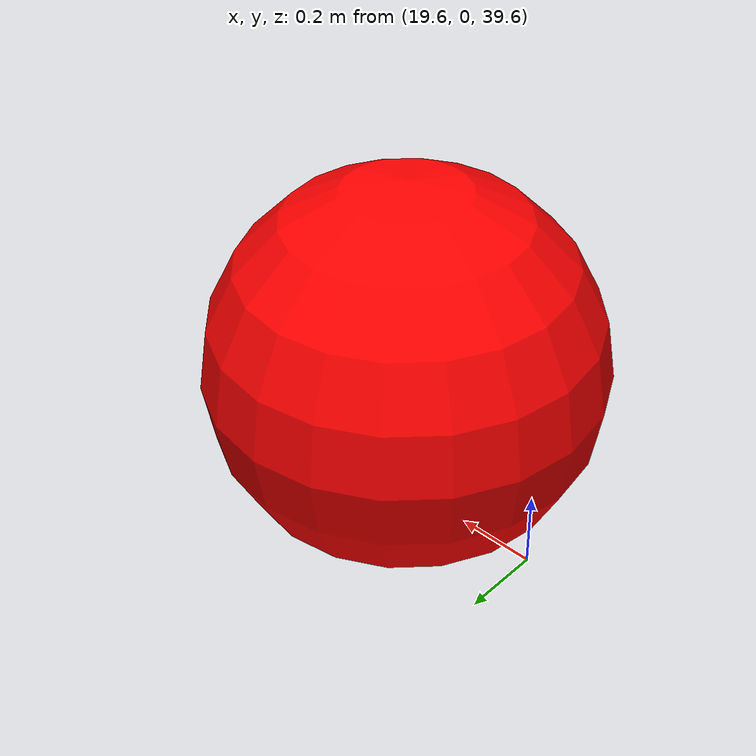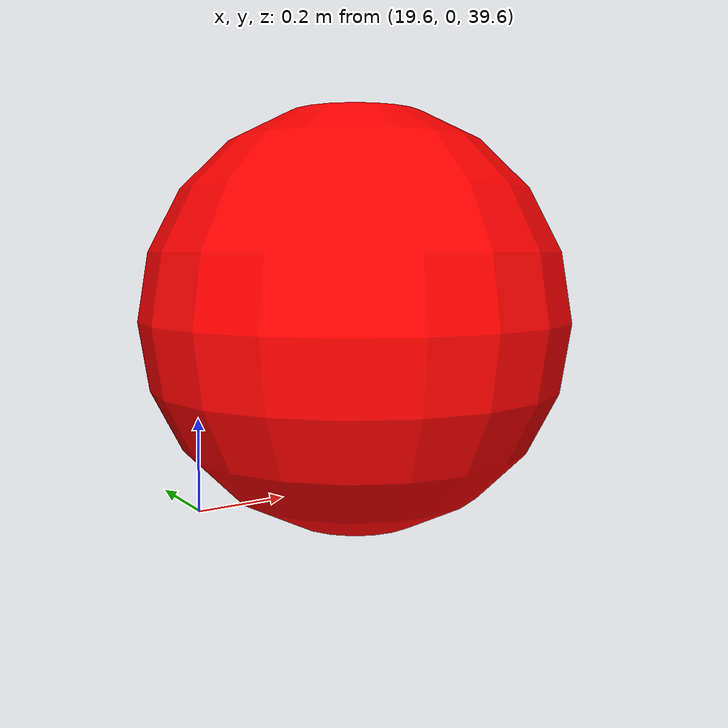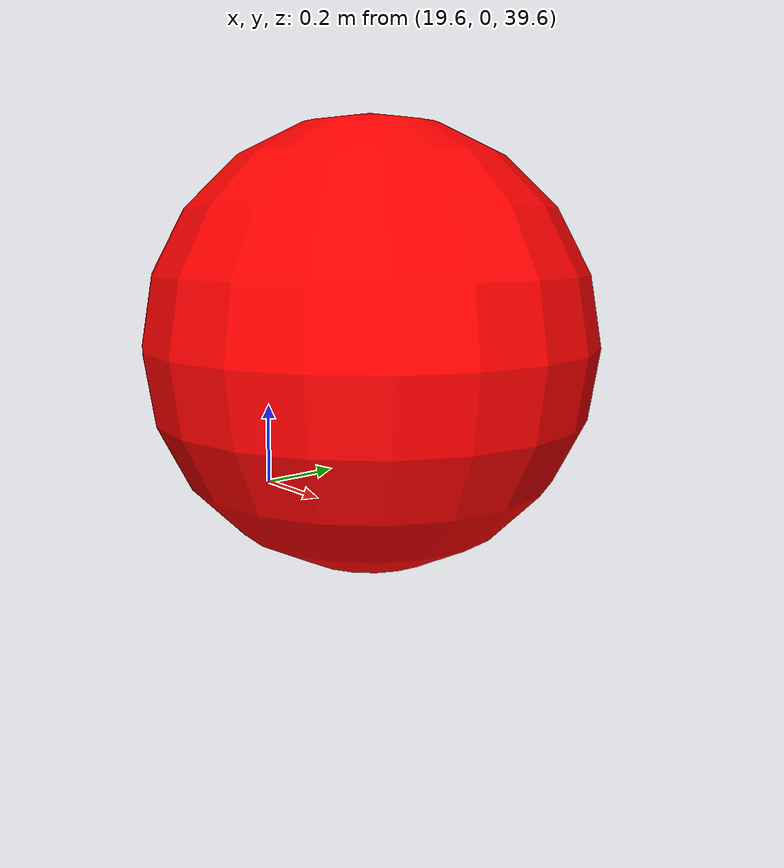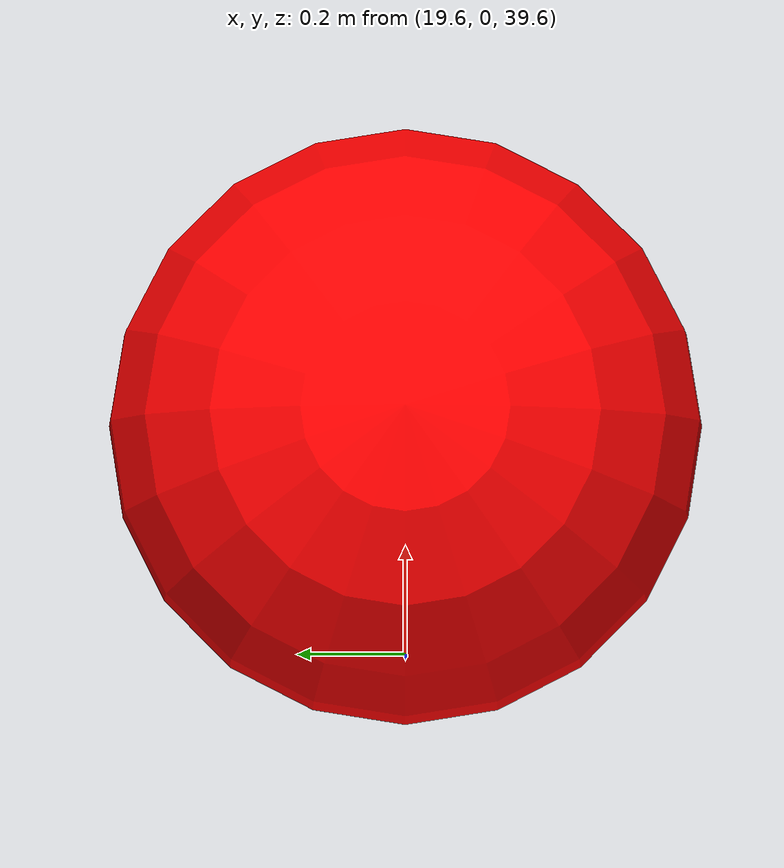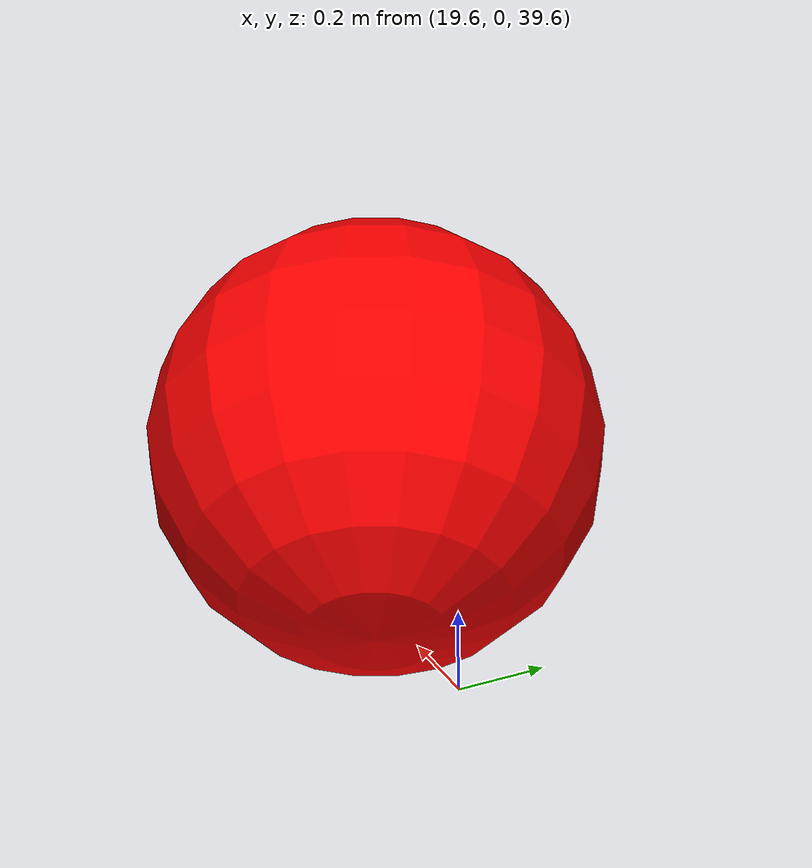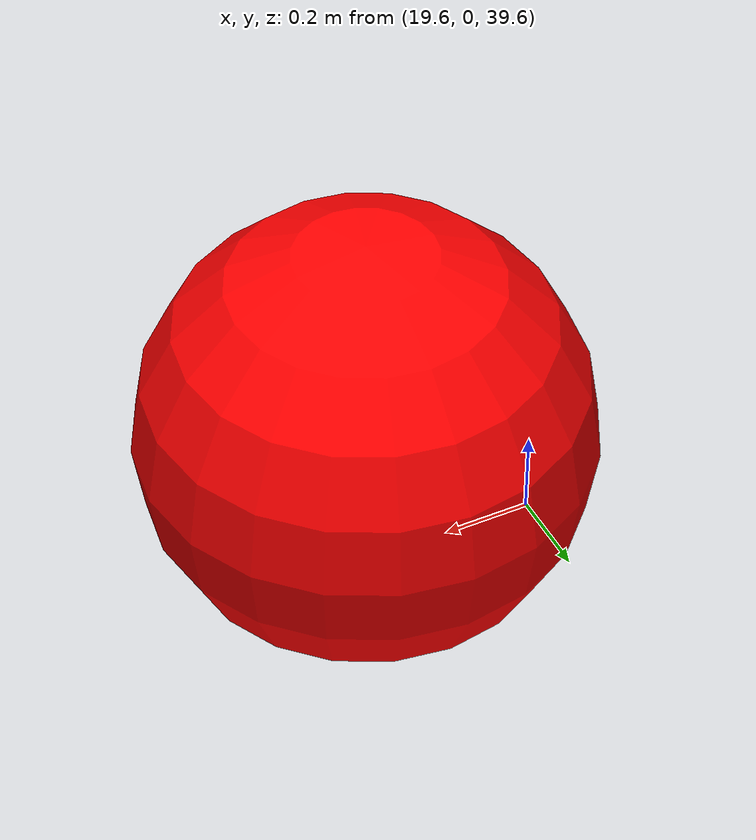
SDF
<?xml version="1.0"?>
<sdf version="1.6">
  <model name="sptballoon">
    <pose>20 0 40 0 0 0</pose>
    <static>false</static>

    <link name="x_link">
      <inertial>
        <mass>0.1</mass>
        <inertia>
          <ixx>0.01</ixx>
          <ixy>0</ixy>
          <ixz>0</ixz>
          <iyy>0.01</iyy>
          <iyz>0</iyz>
          <izz>0.01</izz>
        </inertia>
      </inertial>
    </link>

    <link name="y_link">
      <inertial>
        <mass>0.1</mass>
        <inertia>
          <ixx>0.01</ixx>
          <ixy>0</ixy>
          <ixz>0</ixz>
          <iyy>0.01</iyy>
          <iyz>0</iyz>
          <izz>0.01</izz>
        </inertia>
      </inertial>
    </link>

    <link name="z_link">
      <gravity>false</gravity>
      <inertial>
        <mass>1.0</mass>
        <inertia>
          <ixx>0.1</ixx>
          <ixy>0</ixy>
          <ixz>0</ixz>
          <iyy>0.1</iyy>
          <iyz>0</iyz>
          <izz>0.1</izz>
        </inertia>
      </inertial>
      <visual name="visual">
        <geometry>
          <sphere><radius>0.5</radius></sphere>
        </geometry>
        <material>
          <ambient>1.0 0.0 0.0 1.0</ambient>
          <diffuse>1.0 0.0 0.0 1.0</diffuse>
        </material>
      </visual>
      <collision name="collision">
        <geometry>
          <sphere><radius>0.5</radius></sphere>
        </geometry>
      </collision>
    </link>

    <joint name="x_axis_joint" type="prismatic">
      <parent>world</parent>
      <child>x_link</child>
      <axis>
        <xyz>1 0 0</xyz>
        <limit>
          <lower>-100</lower>
          <upper>100</upper>
          <velocity>3.0</velocity>
        </limit>
        <dynamics>
          <damping>0.5</damping>  <!-- 阻尼 -->
          <friction>0.1</friction>  <!-- 静摩擦 -->
        </dynamics>
      </axis>
    </joint>

    <joint name="y_axis_joint" type="prismatic">
      <parent>x_link</parent>
      <child>y_link</child>
      <axis>
        <xyz>0 1 0</xyz>
        <limit>
          <lower>-100</lower>
          <upper>100</upper>
          <velocity>3.0</velocity>
        </limit>
        <dynamics>
          <damping>0.5</damping>  <!-- 阻尼 -->
          <friction>0.1</friction>  <!-- 静摩擦 -->
        </dynamics>
      </axis>
    </joint>

    <joint name="z_axis_joint" type="prismatic">
      <parent>y_link</parent>
      <child>z_link</child>
      <axis>
        <xyz>0 0 1</xyz>  <!-- z轴方向 -->
        <limit>
          <lower>-100</lower>
          <upper>100</upper>
          <velocity>3.0</velocity>
        </limit>
        <dynamics>
          <damping>1.5</damping>
          <friction>1.0</friction>
        </dynamics>
      </axis>
    </joint>

    <plugin name="gz::sim::systems::JointPositionController" filename="libgz-sim8-joint-position-controller-system.so">
    <joint_name>y_axis_joint</joint_name>
    <!-- PID参数 -->
    <p_gain>4.0</p_gain>
    <i_gain>5.0</i_gain>
    <d_gain>1.0</d_gain>
    <i_clamp>100.0</i_clamp>
    <cmd_topic>/model/sptballoon/joint/y_axis_joint/0/cmd_pos</cmd_topic>
    </plugin>

    <plugin name="gz::sim::systems::JointPositionController" filename="libgz-sim8-joint-position-controller-system.so">
      <joint_name>z_axis_joint</joint_name>
      <p_gain>4.0</p_gain>
      <i_gain>5.0</i_gain>
      <d_gain>1.0</d_gain>
      <i_clamp>100.0</i_clamp>
    </plugin>
    <plugin name="gz::sim::systems::JointPositionController" filename="libgz-sim8-joint-position-controller-system.so">
      <joint_name>x_axis_joint</joint_name>
      <p_gain>4.0</p_gain>
      <i_gain>5.0</i_gain>
      <d_gain>1.0</d_gain>
      <i_clamp>100.0</i_clamp>
    </plugin>
  </model>
</sdf>
